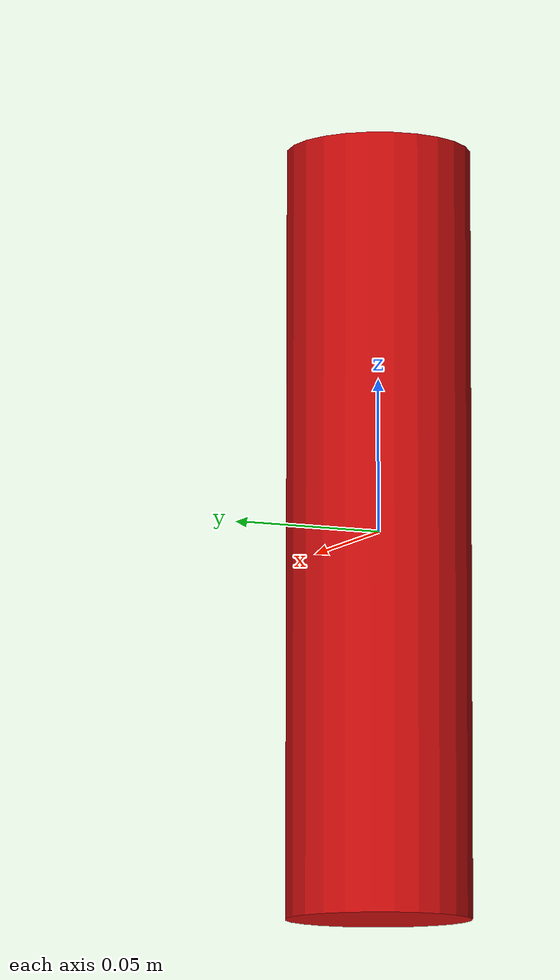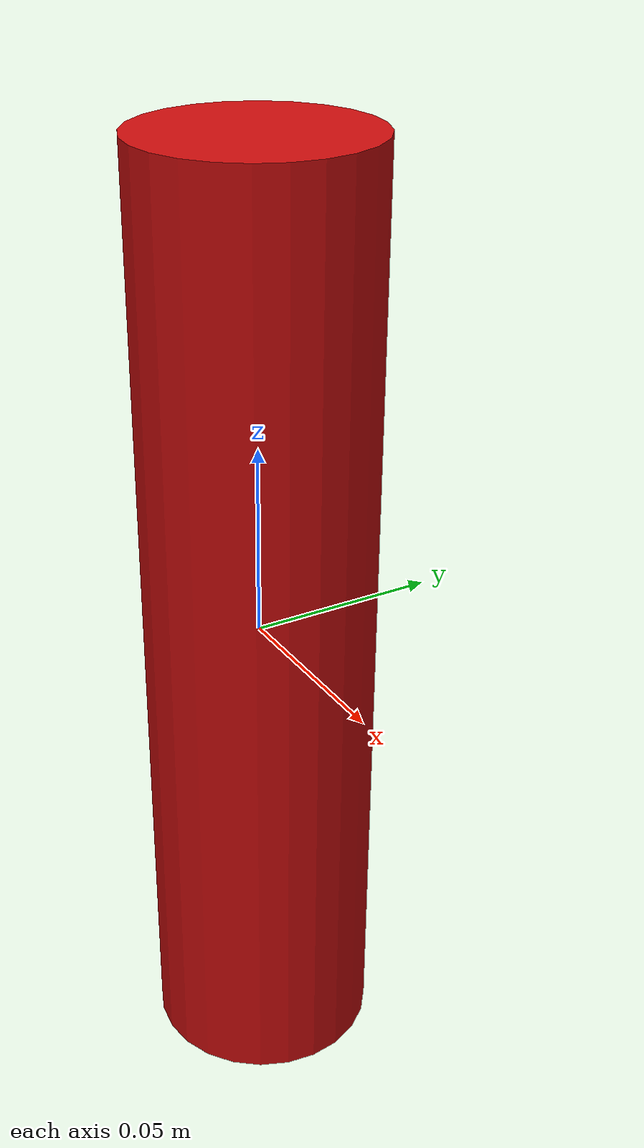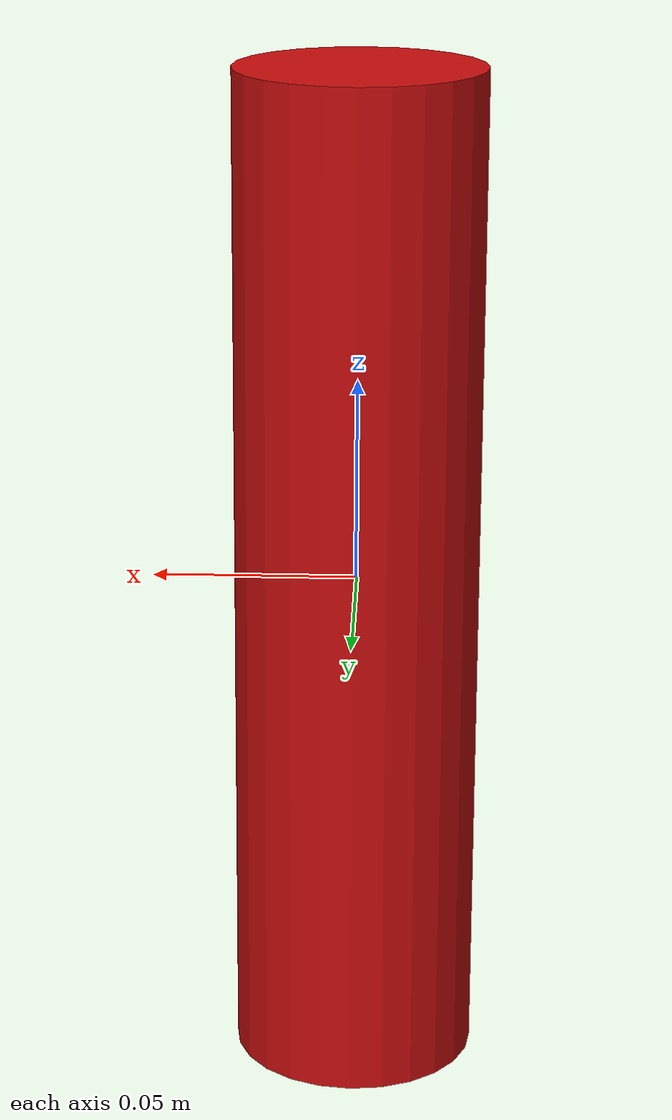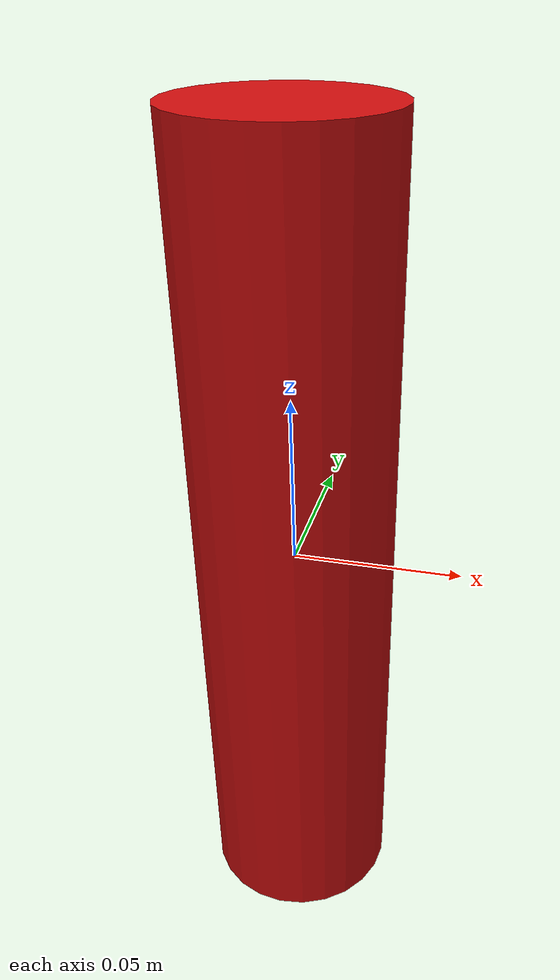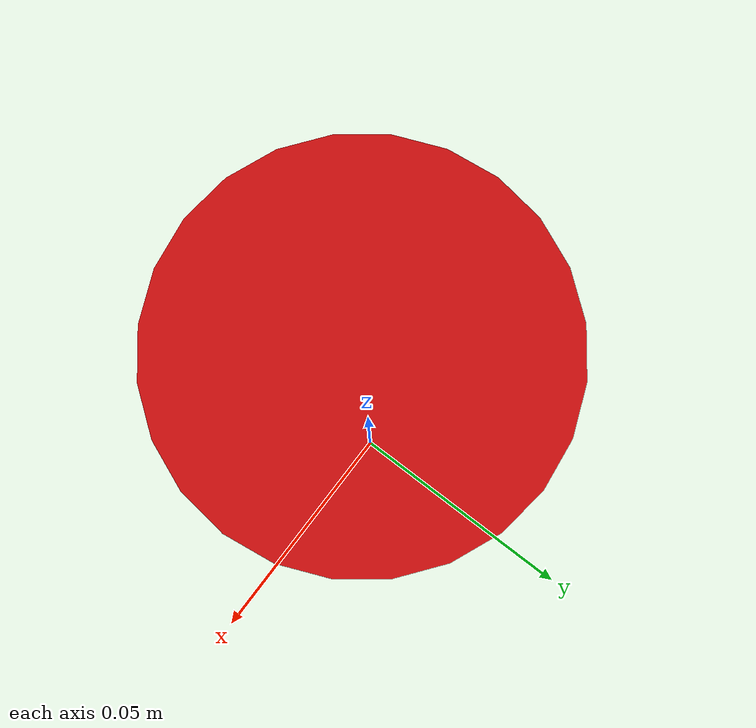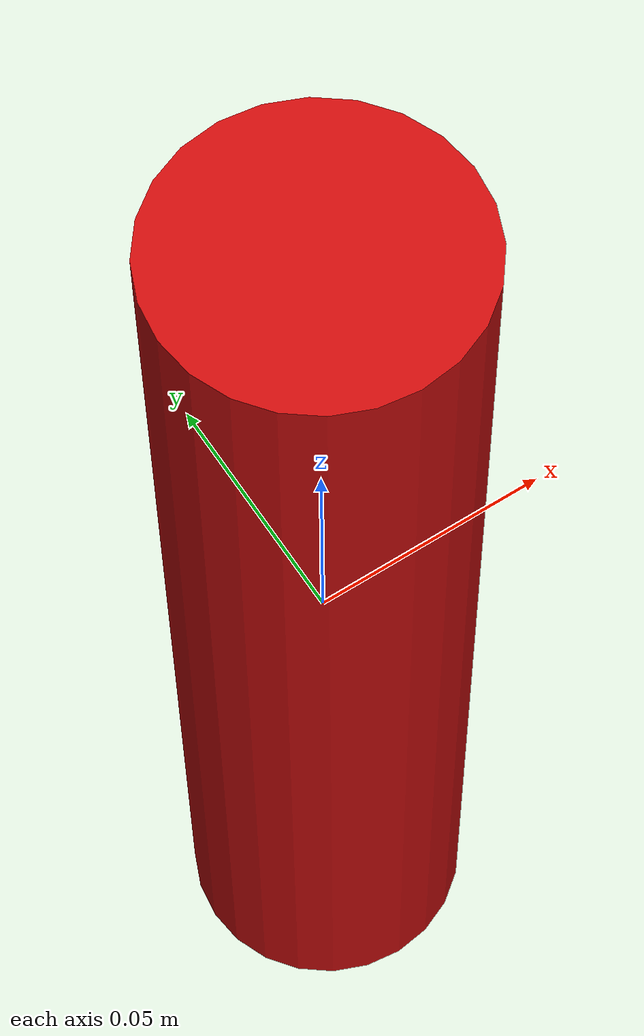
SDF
<?xml version="1.0"?>
<sdf version="1.6">
  <model name="safety_obstacle">
    <static>true</static>
    <link name="obstacle_link">
      <collision name="obstacle_collision">
        <geometry>
          <cylinder>
            <radius>0.03</radius>
            <length>0.25</length>
          </cylinder>
        </geometry>
      </collision>
      <visual name="obstacle_visual">
        <geometry>
          <cylinder>
            <radius>0.03</radius>
            <length>0.25</length>
          </cylinder>
        </geometry>
        <material>
          <ambient>0.8 0.05 0.05 1</ambient>
          <diffuse>0.8 0.05 0.05 1</diffuse>
        </material>
      </visual>
    </link>
  </model>
</sdf>
